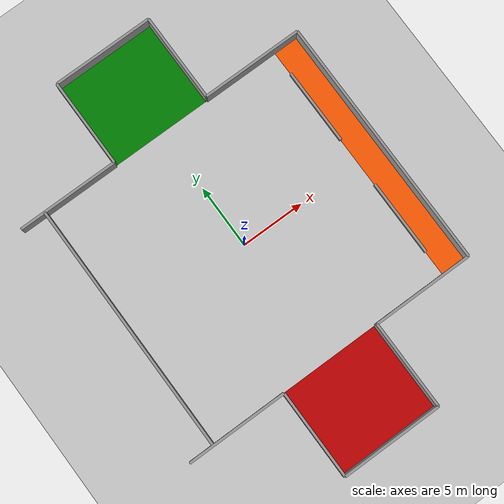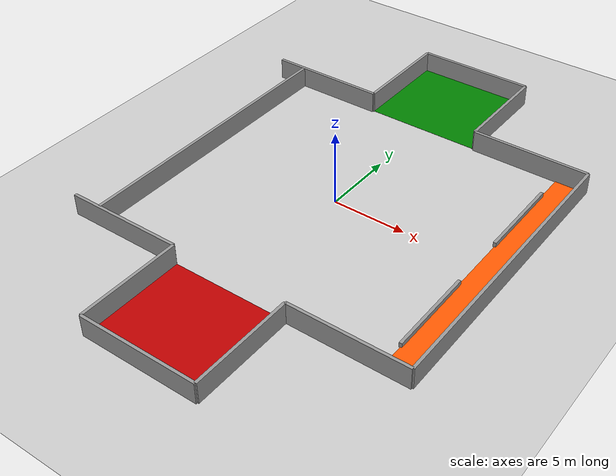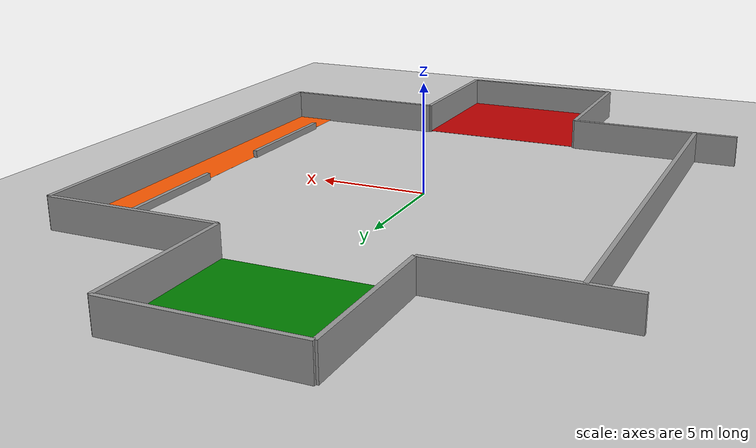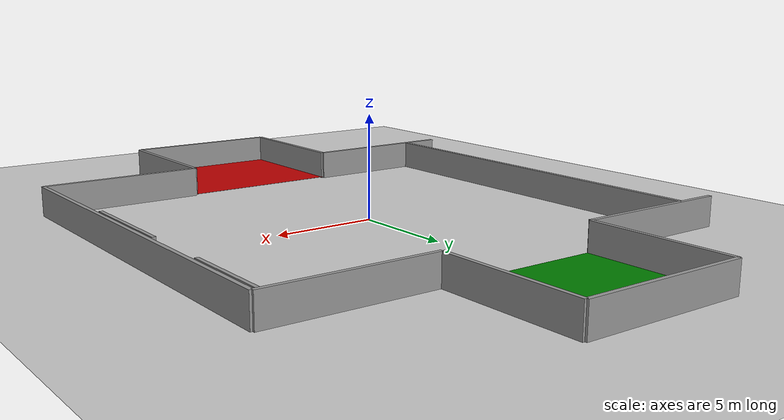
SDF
<sdf version="1.6">
 <world name="default">
  <include><uri>model://ground_plane</uri></include>
  <include><uri>model://sun</uri></include>
  <scene><shadows>false</shadows></scene>
  <physics type="ode">
   <real_time_update_rate>1000.0</real_time_update_rate>
   <max_step_size>0.001</max_step_size>
   <real_time_factor>1</real_time_factor>
   <ode>
    <solver>
     <type>quick</type>
     <iters>150</iters>
     <precon_iters>0</precon_iters>
     <sor>1.400000</sor>
     <use_dynamic_moi_rescaling>1</use_dynamic_moi_rescaling>
    </solver>
    <constraints>
     <cfm>0.00001</cfm>
     <erp>0.2</erp>
     <contact_max_correcting_vel>2000.000000</contact_max_correcting_vel>
     <contact_surface_layer>0.01000</contact_surface_layer>
    </constraints>
   </ode>
  </physics>
  <include><name>warehouse_walls</name><uri>model://warehouse_walls</uri></include>
 </world>
</sdf>

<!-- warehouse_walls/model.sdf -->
<sdf version="1.5">
  <model name="warehouse_walls">
    <static>true</static>

<!-- Wall 1 -->
    <link name="wall1_link">
      <name>wall1_link</name>
      <pose>-10 0 0 0 0 1.57</pose>
      <collision name="collision">
        <geometry>
          <box>
            <size>20 0.2 2.8</size>
          </box>
        </geometry>
      </collision>
      <visual name="wall1_visual">
        <cast_shadows>false</cast_shadows>
        <geometry>
          <box>
            <size>20 0.2 2.8</size>
          </box>
        </geometry>
        <material>
          <script>
            <uri>model://grey_wall/materials/scripts</uri>
            <uri>model://grey_wall/materials/textures</uri>
            <name>vrc/grey_wall</name>
          </script>
        </material>
      </visual>
    </link>

<!-- Wall 2 -->
    <link name="wall2_link2">
      <name>wall2_link2</name>
      <pose>8 -10 0 0 0 0</pose>
      <collision name="wall2_collision2">
        <geometry>
          <box>
            <size>8 0.2 2.8</size>
          </box>
        </geometry>
      </collision>
      <visual name="wall2_visual2">
        <cast_shadows>false</cast_shadows>
        <geometry>
          <box>
            <size>8 0.2 2.8</size>
          </box>
        </geometry>
        <material>
          <script>
            <uri>model://grey_wall/materials/scripts</uri>
            <uri>model://grey_wall/materials/textures</uri>
            <name>vrc/grey_wall</name>
          </script>
        </material>
      </visual>
    </link>

    <link name="wall2_link3">
      <name>wall2_link3</name>
      <pose>4 -13.5 0 0 0 1.57</pose>
      <collision name="wall2_collision3">
        <geometry>
          <box>
            <size>7 0.2 2.8</size>
          </box>
        </geometry>
      </collision>
      <visual name="wall2_visual3">
        <cast_shadows>false</cast_shadows>
        <geometry>
          <box>
            <size>7 0.2 2.8</size>
          </box>
        </geometry>
        <material>
          <script>
            <uri>model://grey_wall/materials/scripts</uri>
            <uri>model://grey_wall/materials/textures</uri>
            <name>vrc/grey_wall</name>
          </script>
        </material>
      </visual>
    </link>

    <link name="wall2_link4">
      <name>wall2_link4</name>
      <pose>0 -17 0 0 0 0</pose>
      <collision name="wall2_collision4">
        <geometry>
          <box>
            <size>8 0.2 2.8</size>
          </box>
        </geometry>
      </collision>
      <visual name="wall2_visual4">
        <cast_shadows>false</cast_shadows>
        <geometry>
          <box>
            <size>8 0.2 2.8</size>
          </box>
        </geometry>
        <material>
          <script>
            <uri>model://grey_wall/materials/scripts</uri>
            <uri>model://grey_wall/materials/textures</uri>
            <name>vrc/grey_wall</name>
          </script>
        </material>
      </visual>
    </link>

    <link name="wall2_link5">
      <name>wall2_link5</name>
      <pose>-4 -13.5 0 0 0 1.57</pose>
      <collision name="wall2_collision5">
        <geometry>
          <box>
            <size>7 0.2 2.8</size>
          </box>
        </geometry>
      </collision>
      <visual name="wall2_visual5">
        <cast_shadows>false</cast_shadows>
        <geometry>
          <box>
            <size>7 0.2 2.8</size>
          </box>
        </geometry>
        <material>
          <script>
            <uri>model://grey_wall/materials/scripts</uri>
            <uri>model://grey_wall/materials/textures</uri>
            <name>vrc/grey_wall</name>
          </script>
        </material>
      </visual>
    </link>

    <link name="wall2_link6">
      <name>wall2_link6</name>
      <pose>-8 -10 0 0 0 0</pose>
      <collision name="wall2_collision6">
        <geometry>
          <box>
            <size>8 0.2 2.8</size>
          </box>
        </geometry>
      </collision>
      <visual name="wall2_visual6">
        <cast_shadows>false</cast_shadows>
        <geometry>
          <box>
            <size>8 0.2 2.8</size>
          </box>
        </geometry>
        <material>
          <script>
            <uri>model://grey_wall/materials/scripts</uri>
            <uri>model://grey_wall/materials/textures</uri>
            <name>vrc/grey_wall</name>
          </script>
        </material>
      </visual>
    </link>

<!--Lets also add Output Area Visual to be green color-->

    <link name="output_area_0">
      <name>output_area_0</name>
      <pose>0 13.5 0 0 0 0</pose>
	  <visual name='visual_output_area_0'>
		<cast_shadows>false</cast_shadows>
		<geometry>
		  <plane>
		    <normal>0 0 1</normal>
		    <size>8 7</size>
		  </plane>
		</geometry>
	  <material>
	    <ambient>0 0.5 0 1</ambient>
	    <diffuse>0 0.5 0 1</diffuse>
	    <specular>0 0 0 1</specular>
	    <emissive>0 0 0 0</emissive>
	  </material>
	  </visual>
    </link>

<!-- Wall 3 -->
    <link name="wall3_link2">
      <name>wall3_link2</name>
      <pose>8 10 0 0 0 0</pose>
      <collision name="wall3_collision2">
        <geometry>
          <box>
            <size>8 0.2 2.8</size>
          </box>
        </geometry>
      </collision>
      <visual name="wall3_visual2">
        <cast_shadows>false</cast_shadows>
        <geometry>
          <box>
            <size>8 0.2 2.8</size>
          </box>
        </geometry>
        <material>
          <script>
            <uri>model://grey_wall/materials/scripts</uri>
            <uri>model://grey_wall/materials/textures</uri>
            <name>vrc/grey_wall</name>
          </script>
        </material>
      </visual>
    </link>

    <link name="wall3_link3">
      <name>wall3_link3</name>
      <pose>4 13.5 0 0 0 1.57</pose>
      <collision name="wall3_collision3">
        <geometry>
          <box>
            <size>7 0.2 2.8</size>
          </box>
        </geometry>
      </collision>
      <visual name="wall3_visual3">
        <cast_shadows>false</cast_shadows>
        <geometry>
          <box>
            <size>7 0.2 2.8</size>
          </box>
        </geometry>
        <material>
          <script>
            <uri>model://grey_wall/materials/scripts</uri>
            <uri>model://grey_wall/materials/textures</uri>
            <name>vrc/grey_wall</name>
          </script>
        </material>
      </visual>
    </link>

    <link name="wall3_link4">
      <name>wall3_link4</name>
      <pose>0 17 0 0 0 0</pose>
      <collision name="wall3_collision4">
        <geometry>
          <box>
            <size>8 0.2 2.8</size>
          </box>
        </geometry>
      </collision>
      <visual name="wall3_visual4">
        <cast_shadows>false</cast_shadows>
        <geometry>
          <box>
            <size>8 0.2 2.8</size>
          </box>
        </geometry>
        <material>
          <script>
            <uri>model://grey_wall/materials/scripts</uri>
            <uri>model://grey_wall/materials/textures</uri>
            <name>vrc/grey_wall</name>
          </script>
        </material>
      </visual>
    </link>

    <link name="wall3_link5">
      <name>wall3_link5</name>
      <pose>-4 13.5 0 0 0 1.57</pose>
      <collision name="wall3_collision5">
        <geometry>
          <box>
            <size>7 0.2 2.8</size>
          </box>
        </geometry>
      </collision>
      <visual name="wall3_visual5">
        <cast_shadows>false</cast_shadows>
        <geometry>
          <box>
            <size>7 0.2 2.8</size>
          </box>
        </geometry>
        <material>
          <script>
            <uri>model://grey_wall/materials/scripts</uri>
            <uri>model://grey_wall/materials/textures</uri>
            <name>vrc/grey_wall</name>
          </script>
        </material>
      </visual>
    </link>

    <link name="wall3_link6">
      <name>wall3_link6</name>
      <pose>-8 10 0 0 0 0</pose>
      <collision name="wall3_collision6">
        <geometry>
          <box>
            <size>8 0.2 2.8</size>
          </box>
        </geometry>
      </collision>
      <visual name="wall3_visual6">
        <cast_shadows>false</cast_shadows>
        <geometry>
          <box>
            <size>8 0.2 2.8</size>
          </box>
        </geometry>
        <material>
          <script>
            <uri>model://grey_wall/materials/scripts</uri>
            <uri>model://grey_wall/materials/textures</uri>
            <name>vrc/grey_wall</name>
          </script>
        </material>
      </visual>
    </link>

<!--Lets also add Input Area Visual to be Red color-->

    <link name="output_area_1">
      <name>output_area_1</name>
      <pose>0 -13.5 0 0 0 0</pose>
	  <visual name='visual_output_area_1'>
		<cast_shadows>false</cast_shadows>
		<geometry>
		  <plane>
		    <normal>0 0 1</normal>
		    <size>8 7</size>
		  </plane>
		</geometry>
	  <material>
	    <ambient>0.75 0 0 1</ambient>
	    <diffuse>0.75 0 0 1</diffuse>
	    <specular>0 0 0 1</specular>
	    <emissive>0 0 0 0</emissive>
	  </material>
	  </visual>
    </link>

<!-- Wall 4 -->
    <link name="wall4_link">
      <name>wall4_link4</name>
      <pose>12 0 0 0 0 1.57</pose>
      <collision name="wall4_collision">
        <geometry>
          <box>
            <size>20 0.2 2.8</size>
          </box>
        </geometry>
      </collision>
      <visual name="wall4_visual">
        <cast_shadows>false</cast_shadows>
        <geometry>
          <box>
            <size>20 0.2 2.8</size>
          </box>
        </geometry>
        <material>
          <script>
            <uri>model://grey_wall/materials/scripts</uri>
            <uri>model://grey_wall/materials/textures</uri>
            <name>vrc/grey_wall</name>
          </script>
        </material>
      </visual>
    </link>

<!-- Resting Area Walls -->
    <link name="wall5_link1">
      <name>wall5_link1</name>
      <pose>10 -5 0 0 0 1.57</pose>
      <collision name="wall5_collision1">
        <geometry>
          <box>
            <size>6 0.2 0.6</size>
          </box>
        </geometry>
      </collision>
      <visual name="wall5_visual1">
        <cast_shadows>false</cast_shadows>
        <geometry>
          <box>
            <size>6 0.2 0.6</size>
          </box>
        </geometry>
        <material>
          <script>
            <uri>model://grey_wall/materials/scripts</uri>
            <uri>model://grey_wall/materials/textures</uri>
            <name>vrc/grey_wall</name>
          </script>
        </material>
      </visual>
    </link>

    <link name="wall5_link2">
      <name>wall5_link2</name>
      <pose>10 5 0 0 0 1.57</pose>
      <collision name="wall5_collision2">
        <geometry>
          <box>
            <size>6 0.2 0.6</size>
          </box>
        </geometry>
      </collision>
      <visual name="wall5_visual2">
        <cast_shadows>false</cast_shadows>
        <geometry>
          <box>
            <size>6 0.2 0.6</size>
          </box>
        </geometry>
        <material>
          <script>
            <uri>model://grey_wall/materials/scripts</uri>
            <uri>model://grey_wall/materials/textures</uri>
            <name>vrc/grey_wall</name>
          </script>
        </material>
      </visual>
    </link>

<!--Lets also add Resting Area Visual to be a darker orange color-->

    <link name="resting_area">
      <name>resting_area_2</name>
      <pose>11 0 0 0 0 1.57</pose>
	  <visual name='visual_resting_area'>
		<cast_shadows>false</cast_shadows>
		<geometry>
		  <plane>
		    <normal>0 0 1</normal>
		    <size>20 2</size>
		  </plane>
		</geometry>
	  <material>
	    <ambient>1 0.35 0 1</ambient>
	    <diffuse>1 0.35 0 1</diffuse>
	    <specular>0 0 0 1</specular>
	    <emissive>0 0 0 0</emissive>
	  </material>
	  </visual>
    </link>

  </model>
</sdf>
